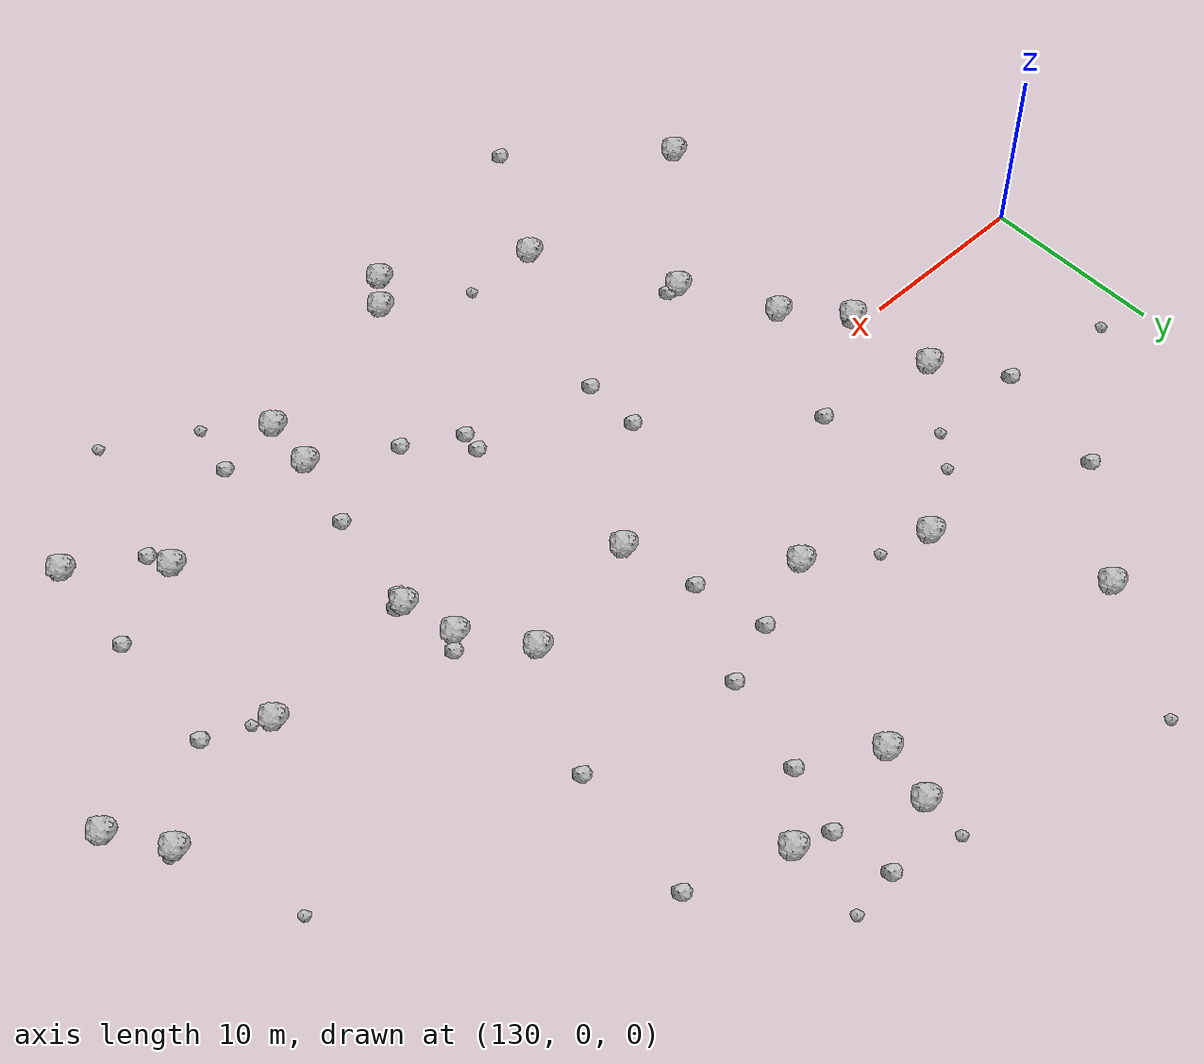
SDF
<sdf version="1.6">
 <world name="default">
  <include><uri>model://sun</uri></include>
  <model name="rock1_4_2">
   <include><uri>model://rock1</uri><pose>171.1115816782095 -2.803136185188329 0.5 0 0 0</pose></include>
  </model>
  <model name="rock1_4_3">
   <include><uri>model://rock1</uri><pose>141.2246622575208 4.485849248454322 0.5 0 0 0</pose></include>
  </model>
  <model name="rock1_4_4">
   <include><uri>model://rock1</uri><pose>177.88840234369596 -12.396864987381417 0.5 0 0 0</pose></include>
  </model>
  <model name="rock1_4_5">
   <include><uri>model://rock1</uri><pose>167.00656370888856 19.36475588498687 0.5 0 0 0</pose></include>
  </model>
  <model name="rock1_4_6">
   <include><uri>model://rock1</uri><pose>151.0959023063089 -15.975238629605874 0.5 0 0 0</pose></include>
  </model>
  <model name="rock1_4_7">
   <include><uri>model://rock1</uri><pose>144.30309144016704 -3.555091549206246 0.5 0 0 0</pose></include>
  </model>
  <model name="rock1_4_8">
   <include><uri>model://rock1</uri><pose>145.33725598773617 20.046755080096098 0.5 0 0 0</pose></include>
  </model>
  <model name="rock1_4_9">
   <include><uri>model://rock1</uri><pose>169.1239515369769 -12.942885576576955 0.5 0 0 0</pose></include>
  </model>
  <model name="rock1_4_10">
   <include><uri>model://rock1</uri><pose>161.0651226579298 2.05123961117026 0.5 0 0 0</pose></include>
  </model>
  <model name="rock1_4_11">
   <include><uri>model://rock1</uri><pose>170.41829720337492 0.17532179153624483 0.5 0 0 0</pose></include>
  </model>
  <model name="rock1_4_12">
   <include><uri>model://rock1</uri><pose>149.44533988581355 11.898068182410533 0.5 0 0 0</pose></include>
  </model>
  <model name="rock1_4_13">
   <include><uri>model://rock1</uri><pose>188.9631464271765 -2.579429580321058 0.5 0 0 0</pose></include>
  </model>
  <model name="rock1_4_14">
   <include><uri>model://rock1</uri><pose>155.3588319672132 8.686211733596167 0.5 0 0 0</pose></include>
  </model>
  <model name="rock1_4_15">
   <include><uri>model://rock1</uri><pose>179.69809600154838 -1.985422838662732 0.5 0 0 0</pose></include>
  </model>
  <model name="rock1_4_16">
   <include><uri>model://rock1</uri><pose>141.64150398137093 -0.6208308745679787 0.5 0 0 0</pose></include>
  </model>
  <model name="rock1_4_17">
   <include><uri>model://rock1</uri><pose>158.2970970246982 -20.146010556416634 0.5 0 0 0</pose></include>
  </model>
  <model name="rock1_4_18">
   <include><uri>model://rock1</uri><pose>160.8759913461946 21.797687789129824 0.5 0 0 0</pose></include>
  </model>
  <model name="rock1_4_19">
   <include><uri>model://rock1</uri><pose>168.84395681992555 -15.95402158137211 0.5 0 0 0</pose></include>
  </model>
  <model name="rock1_4_20">
   <include><uri>model://rock1</uri><pose>160.1593422917112 18.788759035527512 0.5 0 0 0</pose></include>
  </model>
  <model name="rock1_4_21">
   <include><uri>model://rock1</uri><pose>146.93828696053052 -8.564170865935829 0.5 0 0 0</pose></include>
  </model>
  <model name="rock1_4_22">
   <include><uri>model://rock1</uri><pose>187.06162820945613 0.31210907090894224 0.5 0 0 0</pose></include>
  </model>
  <model name="rock1_4_23">
   <include><uri>model://rock1</uri><pose>139.83366658362544 -16.18086701679941 0.5 0 0 0</pose></include>
  </model>
  <model name="rock1_4_24">
   <include><uri>model://rock1</uri><pose>159.58289532596137 -18.50771692173701 0.5 0 0 0</pose></include>
  </model>
  <model name="rock1_4_25">
   <include><uri>model://rock1</uri><pose>168.08427662780505 3.524922751194268 0.5 0 0 0</pose></include>
  </model>
  <model name="rock1_4_26">
   <include><uri>model://rock1</uri><pose>181.9735384465771 -15.9095873585947 0.5 0 0 0</pose></include>
  </model>
  <model name="rock2_4_0">
   <include><uri>model://rock2</uri><pose>141.9359560907021 -0.3685897929400994 0.3 0 0 0</pose></include>
  </model>
  <model name="rock2_4_1">
   <include><uri>model://rock2</uri><pose>164.65414991444305 23.2581777940212 0.3 0 0 0</pose></include>
  </model>
  <model name="rock2_4_2">
   <include><uri>model://rock2</uri><pose>155.14584996682558 -6.626616284462379 0.3 0 0 0</pose></include>
  </model>
  <model name="rock2_4_3">
   <include><uri>model://rock2</uri><pose>178.40267640527338 -13.679559526286347 0.3 0 0 0</pose></include>
  </model>
  <model name="rock2_4_4">
   <include><uri>model://rock2</uri><pose>147.22193441893128 -22.738087881849744 0.3 0 0 0</pose></include>
  </model>
  <model name="rock2_4_5">
   <include><uri>model://rock2</uri><pose>159.2619484947104 10.15804922251236 0.3 0 0 0</pose></include>
  </model>
  <model name="rock2_4_6">
   <include><uri>model://rock2</uri><pose>170.1265862766824 -8.738449401466916 0.3 0 0 0</pose></include>
  </model>
  <model name="rock2_4_7">
   <include><uri>model://rock2</uri><pose>182.35801592341844 -10.279950981227465 0.3 0 0 0</pose></include>
  </model>
  <model name="rock2_4_8">
   <include><uri>model://rock2</uri><pose>138.70085009515165 8.059613939040489 0.3 0 0 0</pose></include>
  </model>
  <model name="rock2_4_9">
   <include><uri>model://rock2</uri><pose>172.33676419429543 -15.382988098881947 0.3 0 0 0</pose></include>
  </model>
  <model name="rock2_4_10">
   <include><uri>model://rock2</uri><pose>171.25147941749276 10.11285030643591 0.3 0 0 0</pose></include>
  </model>
  <model name="rock2_4_11">
   <include><uri>model://rock2</uri><pose>162.0091600479542 -8.6998149047233 0.3 0 0 0</pose></include>
  </model>
  <model name="rock2_4_12">
   <include><uri>model://rock2</uri><pose>147.7682717934197 3.185017600671358 0.3 0 0 0</pose></include>
  </model>
  <model name="rock2_4_13">
   <include><uri>model://rock2</uri><pose>162.5979899921553 11.400297746935735 0.3 0 0 0</pose></include>
  </model>
  <model name="rock2_4_14">
   <include><uri>model://rock2</uri><pose>172.1064056135566 17.53128983935531 0.3 0 0 0</pose></include>
  </model>
  <model name="rock2_4_15">
   <include><uri>model://rock2</uri><pose>165.08773692657186 20.040597140284277 0.3 0 0 0</pose></include>
  </model>
  <model name="rock2_4_16">
   <include><uri>model://rock2</uri><pose>182.83508007229216 -3.4355713980580376 0.3 0 0 0</pose></include>
  </model>
  <model name="rock2_4_17">
   <include><uri>model://rock2</uri><pose>170.9255112387907 -3.4341794237115693 0.3 0 0 0</pose></include>
  </model>
  <model name="rock2_4_18">
   <include><uri>model://rock2</uri><pose>164.93478915002476 -10.414165114126103 0.3 0 0 0</pose></include>
  </model>
  <model name="rock2_4_19">
   <include><uri>model://rock2</uri><pose>140.13327559032135 14.587314779987459 0.3 0 0 0</pose></include>
  </model>
  <model name="rock2_4_20">
   <include><uri>model://rock2</uri><pose>155.23954785621464 -3.3204785278943305 0.3 0 0 0</pose></include>
  </model>
  <model name="rock2_4_21">
   <include><uri>model://rock2</uri><pose>160.04754881442412 6.156189683145449 0.3 0 0 0</pose></include>
  </model>
  <model name="rock2_4_22">
   <include><uri>model://rock2</uri><pose>147.6092497808437 -8.598359445579028 0.3 0 0 0</pose></include>
  </model>
  <model name="rock2_4_23">
   <include><uri>model://rock2</uri><pose>163.963658479769 16.5744618348865 0.3 0 0 0</pose></include>
  </model>
  <model name="rock2_4_24">
   <include><uri>model://rock2</uri><pose>171.51521991572253 -2.857437143592822 0.3 0 0 0</pose></include>
  </model>
  <model name="rock2_4_25">
   <include><uri>model://rock2</uri><pose>171.09026809551517 0.947237531418871 0.3 0 0 0</pose></include>
  </model>
  <model name="rock2_4_26">
   <include><uri>model://rock2</uri><pose>162.18991753833507 -7.541581690217463 0.3 0 0 0</pose></include>
  </model>
  <model name="rock3_4_0">
   <include><uri>model://rock3</uri><pose>144.18398269878773 7.9799712771025355 0.2 0 0 0</pose></include>
  </model>
  <model name="rock3_4_1">
   <include><uri>model://rock3</uri><pose>184.85111026286202 6.859874355188971 0.2 0 0 0</pose></include>
  </model>
  <model name="rock3_4_2">
   <include><uri>model://rock3</uri><pose>176.19047889873616 -20.96861530371625 0.2 0 0 0</pose></include>
  </model>
  <model name="rock3_4_3">
   <include><uri>model://rock3</uri><pose>155.20551831726672 -16.01279569345528 0.2 0 0 0</pose></include>
  </model>
  <model name="rock3_4_4">
   <include><uri>model://rock3</uri><pose>160.96246838187724 24.131920799420172 0.2 0 0 0</pose></include>
  </model>
  <model name="rock3_4_5">
   <include><uri>model://rock3</uri><pose>187.44620216681244 0.4583444833049981 0.2 0 0 0</pose></include>
  </model>
  <model name="rock3_4_6">
   <include><uri>model://rock3</uri><pose>171.6623826341085 -18.364847470931153 0.2 0 0 0</pose></include>
  </model>
  <model name="rock3_4_7">
   <include><uri>model://rock3</uri><pose>152.1000925414314 11.046412305714732 0.2 0 0 0</pose></include>
  </model>
  <model name="rock3_4_8">
   <include><uri>model://rock3</uri><pose>145.68486589270032 9.776398972031046 0.2 0 0 0</pose></include>
  </model>
  <model name="rock3_4_9">
   <include><uri>model://rock3</uri><pose>180.56759764263347 -2.483473996079205 0.2 0 0 0</pose></include>
  </model>
  <model name="rock3_4_10">
   <include><uri>model://rock3</uri><pose>132.49168489268556 9.053935658621356 0.2 0 0 0</pose></include>
  </model>
  <model name="rock3_4_11">
   <include><uri>model://rock3</uri><pose>149.28714803727502 26.822707765745342 0.2 0 0 0</pose></include>
  </model>
  <model name="rock3_4_12">
   <include><uri>model://rock3</uri><pose>167.26704938047206 23.55602707070709 0.2 0 0 0</pose></include>
  </model>
 </world>
</sdf>
